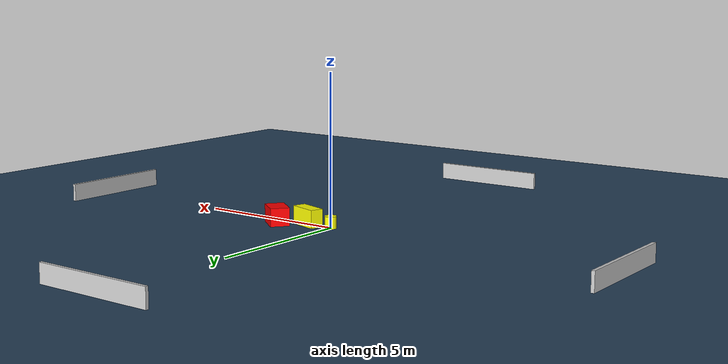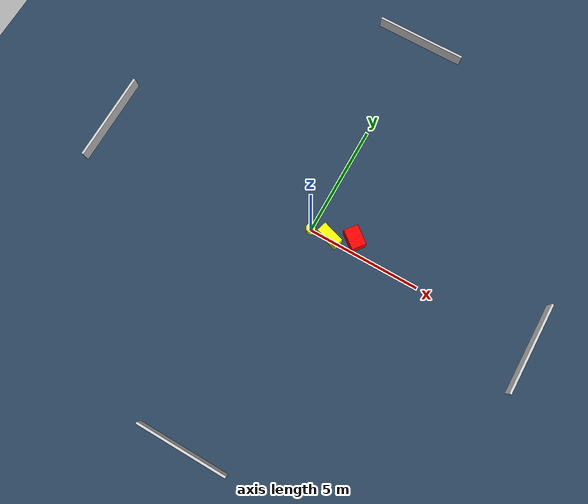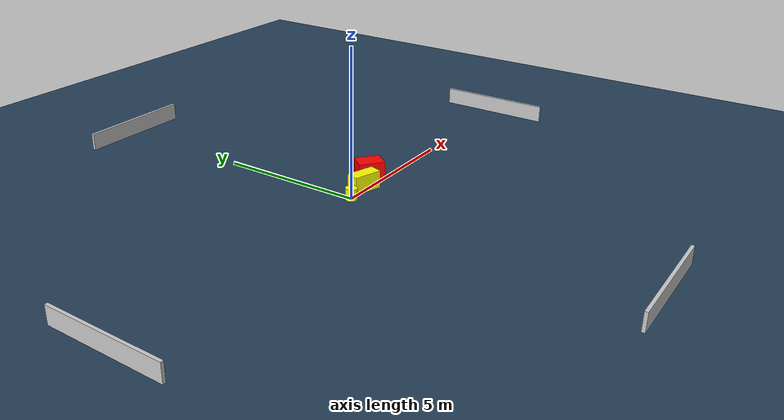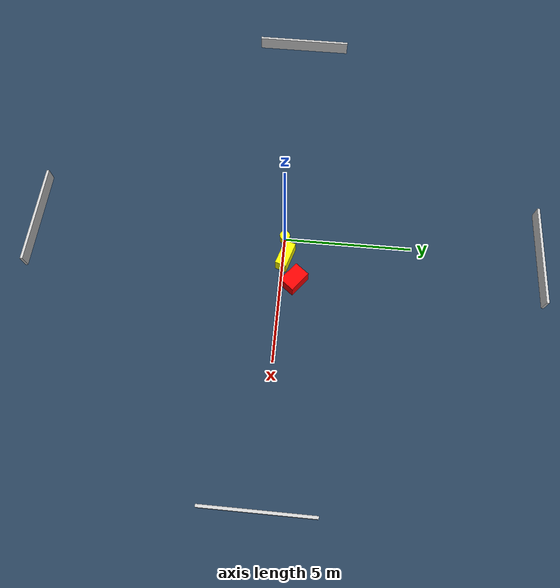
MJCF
<?xml version="1.0" ?>
<mujoco model="generated_environment">
  <option timestep="0.01" integrator="RK4" cone="elliptic"/>
  <default>
    <geom density="1"/>
  </default>
  <asset>
    <texture builtin="gradient" height="3072" name="skybox" rgb1="0.3 0.5 0.7" rgb2="0 0 0" type="skybox" width="512"/>
    <texture builtin="checker" height="300" name="groundplane" rgb1="0.2 0.3 0.4" rgb2="0.1 0.2 0.3" type="2d" width="300"/>
    <material name="groundplane" reflectance="0.2" texrepeat="5 5" texture="groundplane"/>
  </asset>
  <worldbody>
    <light dir="0 0 -1" directional="true" pos="0 0 1.5"/>
    <geom condim="3" friction="0.5 0.005 0.001" material="groundplane" name="floor" pos="0 0 0" size="0 0 0.05" type="plane"/>
    <body name="walls">
      <geom name="wall_1" condim="4" pos="-10.0 0.0 0.3" rgba="0.800000011920929 0.800000011920929 0.800000011920929 1.0" size="0.05 2.0 0.3" type="box"/>
      <geom name="wall_2" condim="4" pos="10.0 0.0 0.3" rgba="0.800000011920929 0.800000011920929 0.800000011920929 1.0" size="0.05 2.0 0.3" type="box"/>
      <geom name="wall_3" condim="4" pos="0.0 -10.0 0.3" rgba="0.800000011920929 0.800000011920929 0.800000011920929 1.0" size="2.0 0.05 0.3" type="box"/>
      <geom name="wall_4" condim="4" pos="0.0 10.0 0.3" rgba="0.800000011920929 0.800000011920929 0.800000011920929 1.0" size="2.0 0.05 0.3" type="box"/>
    </body>
    <body name="robot">
      <joint name="joint_x" type="slide" pos="0 0 0" axis="1 0 0"/>
      <joint name="joint_y" type="slide" pos="0 0 0" axis="0 1 0"/>
      <geom name="robot" type="cylinder" pos="0.0 0.0 0.2" size="0.2 0.2 0.0" mass="5.0" friction="1.0 0.005 0.0001" condim="4" rgba="1.0 1.0 0.0 1.0"/>
    </body>
    <body name="obstacle_1_movable">
      <geom name="obstacle_1_movable" condim="4" pos="0.8529059805586104 0.09974427853703478 0.3" euler="0 0 72.86663168114042" friction="0.0 0.005 0.001" rgba="1.0 1.0 0.0 1.0" size="0.2230411460997931 0.5041432684212273 0.3" type="box" mass="0.1"/>
      <joint type="free"/>
    </body>
    <body name="obstacle_2_static">
      <geom name="obstacle_2_static" condim="4" pos="1.7947420441470996 0.5209140810707427 0.3" euler="0 0 51.990847906499084" friction="0.0 0.005 0.001" rgba="1.0 0.0 0.0 1.0" size="0.31804031227782714 0.44719281927890653 0.3" type="box"/>
    </body>
  </worldbody>
  <actuator>
    <motor name="actuator_x" joint="joint_x" gear="1" ctrlrange="-1 1"/>
    <motor name="actuator_y" joint="joint_y" gear="1" ctrlrange="-1 1"/>
  </actuator>
</mujoco>
